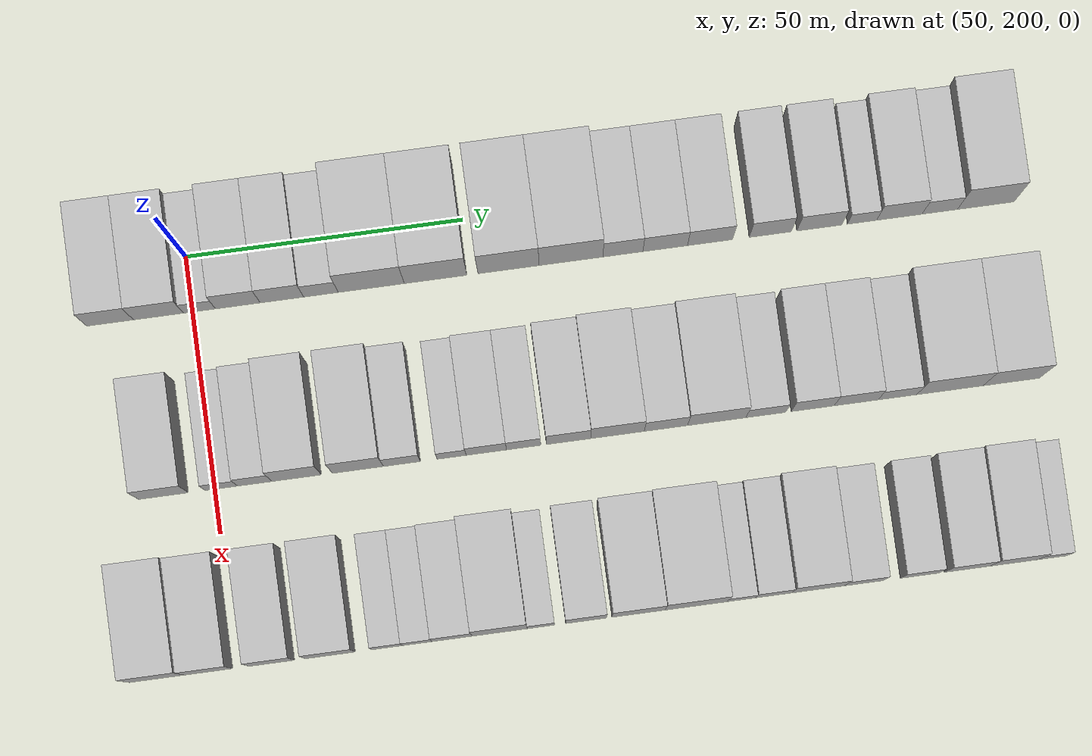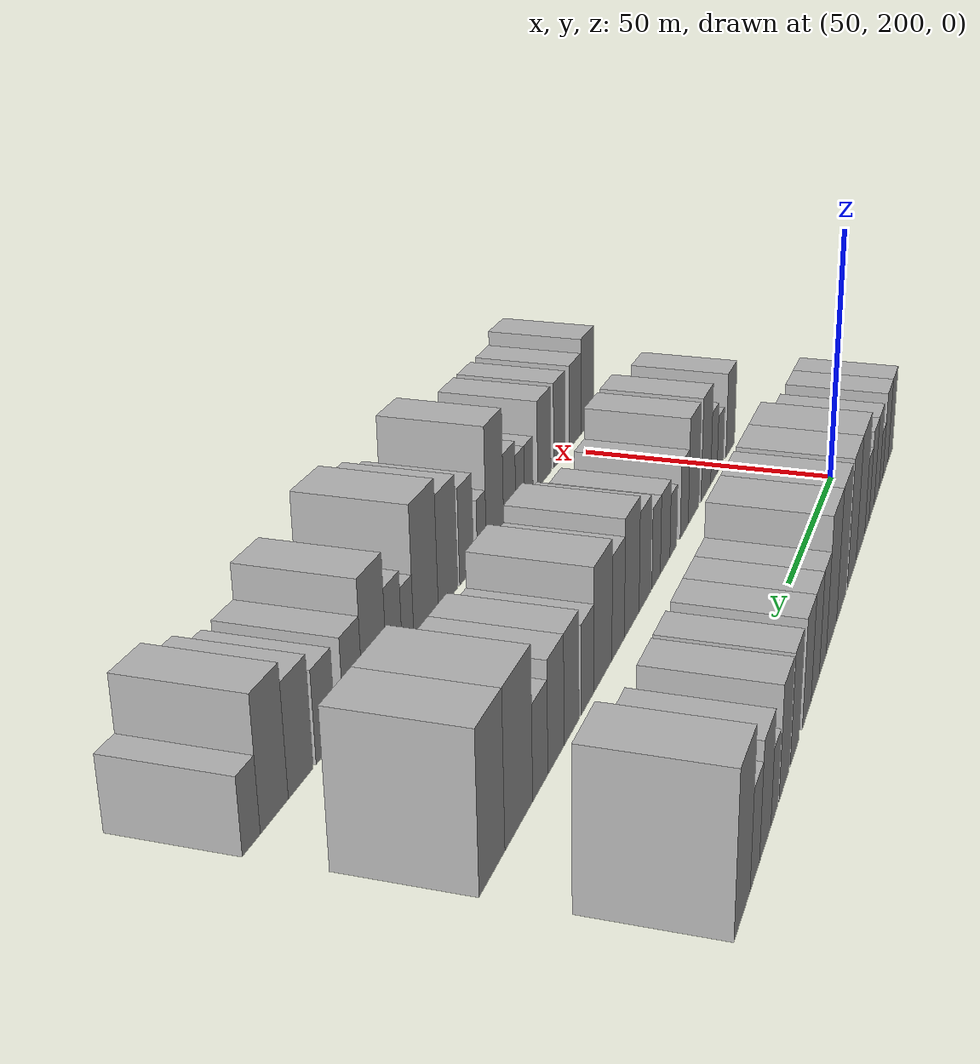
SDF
<sdf version="1.6">
 <world name="default">
  <model name="building_59">
   <static>1</static>
   <pose>50.0000 185.2239 0 0.000000 0.000000 0.000000</pose>
   <link name="link">
    <pose>0 0 9.00 0 0 0</pose>
    <collision name="collision"><geometry><box><size>20.0000 8.4047 18.0000</size></box></geometry></collision>
    <visual name="visual">
     <cast_shadows>0</cast_shadows>
     <geometry><box><size>20.0000 8.4047 18.0000</size></box></geometry>
     <material>
      <script>
       <uri>model://HANNAS_wall/materials/scripts</uri>
       <uri>model://HANNAS_wall/materials/textures</uri>
       <name>vrc/HANNAS_wall</name>
      </script>
     </material>
    </visual>
   </link>
  </model>
  <model name="building_60">
   <static>1</static>
   <pose>50.0000 193.9236 0 0.000000 0.000000 0.000000</pose>
   <link name="link">
    <pose>0 0 9.00 0 0 0</pose>
    <collision name="collision"><geometry><box><size>20.0000 8.9947 18.0000</size></box></geometry></collision>
    <visual name="visual">
     <cast_shadows>0</cast_shadows>
     <geometry><box><size>20.0000 8.9947 18.0000</size></box></geometry>
     <material>
      <script>
       <uri>model://HANNAS_wall/materials/scripts</uri>
       <uri>model://HANNAS_wall/materials/textures</uri>
       <name>vrc/HANNAS_wall</name>
      </script>
     </material>
    </visual>
   </link>
  </model>
  <model name="building_61">
   <static>1</static>
   <pose>50.0000 201.3138 0 0.000000 0.000000 0.000000</pose>
   <link name="link">
    <pose>0 0 6.00 0 0 0</pose>
    <collision name="collision"><geometry><box><size>20.0000 5.7857 12.0000</size></box></geometry></collision>
    <visual name="visual">
     <cast_shadows>0</cast_shadows>
     <geometry><box><size>20.0000 5.7857 12.0000</size></box></geometry>
     <material>
      <script>
       <uri>model://HANNAS_wall/materials/scripts</uri>
       <uri>model://HANNAS_wall/materials/textures</uri>
       <name>vrc/HANNAS_wall</name>
      </script>
     </material>
    </visual>
   </link>
  </model>
  <model name="building_62">
   <static>1</static>
   <pose>50.0000 208.2338 0 0.000000 0.000000 0.000000</pose>
   <link name="link">
    <pose>0 0 9.00 0 0 0</pose>
    <collision name="collision"><geometry><box><size>20.0000 8.0542 18.0000</size></box></geometry></collision>
    <visual name="visual">
     <cast_shadows>0</cast_shadows>
     <geometry><box><size>20.0000 8.0542 18.0000</size></box></geometry>
     <material>
      <script>
       <uri>model://HANNAS_wall/materials/scripts</uri>
       <uri>model://HANNAS_wall/materials/textures</uri>
       <name>vrc/HANNAS_wall</name>
      </script>
     </material>
    </visual>
   </link>
  </model>
  <model name="building_63">
   <static>1</static>
   <pose>50.0000 216.1742 0 0.000000 0.000000 0.000000</pose>
   <link name="link">
    <pose>0 0 9.00 0 0 0</pose>
    <collision name="collision"><geometry><box><size>20.0000 7.8266 18.0000</size></box></geometry></collision>
    <visual name="visual">
     <cast_shadows>0</cast_shadows>
     <geometry><box><size>20.0000 7.8266 18.0000</size></box></geometry>
     <material>
      <script>
       <uri>model://HANNAS_wall/materials/scripts</uri>
       <uri>model://HANNAS_wall/materials/textures</uri>
       <name>vrc/HANNAS_wall</name>
      </script>
     </material>
    </visual>
   </link>
  </model>
  <model name="building_64">
   <static>1</static>
   <pose>50.0000 223.1892 0 0.000000 0.000000 0.000000</pose>
   <link name="link">
    <pose>0 0 7.50 0 0 0</pose>
    <collision name="collision"><geometry><box><size>20.0000 6.2034 15.0000</size></box></geometry></collision>
    <visual name="visual">
     <cast_shadows>0</cast_shadows>
     <geometry><box><size>20.0000 6.2034 15.0000</size></box></geometry>
     <material>
      <script>
       <uri>model://HANNAS_wall/materials/scripts</uri>
       <uri>model://HANNAS_wall/materials/textures</uri>
       <name>vrc/HANNAS_wall</name>
      </script>
     </material>
    </visual>
   </link>
  </model>
  <model name="building_65">
   <static>1</static>
   <pose>50.0000 232.2570 0 0.000000 0.000000 0.000000</pose>
   <link name="link">
    <pose>0 0 12.00 0 0 0</pose>
    <collision name="collision"><geometry><box><size>20.0000 11.9323 24.0000</size></box></geometry></collision>
    <visual name="visual">
     <cast_shadows>0</cast_shadows>
     <geometry><box><size>20.0000 11.9323 24.0000</size></box></geometry>
     <material>
      <script>
       <uri>model://HANNAS_wall/materials/scripts</uri>
       <uri>model://HANNAS_wall/materials/textures</uri>
       <name>vrc/HANNAS_wall</name>
      </script>
     </material>
    </visual>
   </link>
  </model>
  <model name="building_66">
   <static>1</static>
   <pose>50.0000 243.8664 0 0.000000 0.000000 0.000000</pose>
   <link name="link">
    <pose>0 0 12.00 0 0 0</pose>
    <collision name="collision"><geometry><box><size>20.0000 11.2865 24.0000</size></box></geometry></collision>
    <visual name="visual">
     <cast_shadows>0</cast_shadows>
     <geometry><box><size>20.0000 11.2865 24.0000</size></box></geometry>
     <material>
      <script>
       <uri>model://HANNAS_wall/materials/scripts</uri>
       <uri>model://HANNAS_wall/materials/textures</uri>
       <name>vrc/HANNAS_wall</name>
      </script>
     </material>
    </visual>
   </link>
  </model>
  <model name="building_67">
   <static>1</static>
   <pose>50.0000 257.0216 0 0.000000 0.000000 0.000000</pose>
   <link name="link">
    <pose>0 0 12.00 0 0 0</pose>
    <collision name="collision"><geometry><box><size>20.0000 11.0239 24.0000</size></box></geometry></collision>
    <visual name="visual">
     <cast_shadows>0</cast_shadows>
     <geometry><box><size>20.0000 11.0239 24.0000</size></box></geometry>
     <material>
      <script>
       <uri>model://HANNAS_wall/materials/scripts</uri>
       <uri>model://HANNAS_wall/materials/textures</uri>
       <name>vrc/HANNAS_wall</name>
      </script>
     </material>
    </visual>
   </link>
  </model>
  <model name="building_68">
   <static>1</static>
   <pose>50.0000 268.2910 0 0.000000 0.000000 0.000000</pose>
   <link name="link">
    <pose>0 0 12.00 0 0 0</pose>
    <collision name="collision"><geometry><box><size>20.0000 11.5148 24.0000</size></box></geometry></collision>
    <visual name="visual">
     <cast_shadows>0</cast_shadows>
     <geometry><box><size>20.0000 11.5148 24.0000</size></box></geometry>
     <material>
      <script>
       <uri>model://HANNAS_wall/materials/scripts</uri>
       <uri>model://HANNAS_wall/materials/textures</uri>
       <name>vrc/HANNAS_wall</name>
      </script>
     </material>
    </visual>
   </link>
  </model>
  <model name="building_69">
   <static>1</static>
   <pose>50.0000 277.6541 0 0.000000 0.000000 0.000000</pose>
   <link name="link">
    <pose>0 0 9.00 0 0 0</pose>
    <collision name="collision"><geometry><box><size>20.0000 7.2114 18.0000</size></box></geometry></collision>
    <visual name="visual">
     <cast_shadows>0</cast_shadows>
     <geometry><box><size>20.0000 7.2114 18.0000</size></box></geometry>
     <material>
      <script>
       <uri>model://HANNAS_wall/materials/scripts</uri>
       <uri>model://HANNAS_wall/materials/textures</uri>
       <name>vrc/HANNAS_wall</name>
      </script>
     </material>
    </visual>
   </link>
  </model>
  <model name="building_70">
   <static>1</static>
   <pose>50.0000 285.2817 0 0.000000 0.000000 0.000000</pose>
   <link name="link">
    <pose>0 0 9.00 0 0 0</pose>
    <collision name="collision"><geometry><box><size>20.0000 8.0440 18.0000</size></box></geometry></collision>
    <visual name="visual">
     <cast_shadows>0</cast_shadows>
     <geometry><box><size>20.0000 8.0440 18.0000</size></box></geometry>
     <material>
      <script>
       <uri>model://HANNAS_wall/materials/scripts</uri>
       <uri>model://HANNAS_wall/materials/textures</uri>
       <name>vrc/HANNAS_wall</name>
      </script>
     </material>
    </visual>
   </link>
  </model>
  <model name="building_71">
   <static>1</static>
   <pose>50.0000 293.3890 0 0.000000 0.000000 0.000000</pose>
   <link name="link">
    <pose>0 0 9.00 0 0 0</pose>
    <collision name="collision"><geometry><box><size>20.0000 8.1705 18.0000</size></box></geometry></collision>
    <visual name="visual">
     <cast_shadows>0</cast_shadows>
     <geometry><box><size>20.0000 8.1705 18.0000</size></box></geometry>
     <material>
      <script>
       <uri>model://HANNAS_wall/materials/scripts</uri>
       <uri>model://HANNAS_wall/materials/textures</uri>
       <name>vrc/HANNAS_wall</name>
      </script>
     </material>
    </visual>
   </link>
  </model>
  <model name="building_72">
   <static>1</static>
   <pose>50.0000 304.2812 0 0.000000 0.000000 0.000000</pose>
   <link name="link">
    <pose>0 0 9.00 0 0 0</pose>
    <collision name="collision"><geometry><box><size>20.0000 7.6141 18.0000</size></box></geometry></collision>
    <visual name="visual">
     <cast_shadows>0</cast_shadows>
     <geometry><box><size>20.0000 7.6141 18.0000</size></box></geometry>
     <material>
      <script>
       <uri>model://HANNAS_wall/materials/scripts</uri>
       <uri>model://HANNAS_wall/materials/textures</uri>
       <name>vrc/HANNAS_wall</name>
      </script>
     </material>
    </visual>
   </link>
  </model>
  <model name="building_73">
   <static>1</static>
   <pose>50.0000 313.1544 0 0.000000 0.000000 0.000000</pose>
   <link name="link">
    <pose>0 0 9.00 0 0 0</pose>
    <collision name="collision"><geometry><box><size>20.0000 8.1323 18.0000</size></box></geometry></collision>
    <visual name="visual">
     <cast_shadows>0</cast_shadows>
     <geometry><box><size>20.0000 8.1323 18.0000</size></box></geometry>
     <material>
      <script>
       <uri>model://HANNAS_wall/materials/scripts</uri>
       <uri>model://HANNAS_wall/materials/textures</uri>
       <name>vrc/HANNAS_wall</name>
      </script>
     </material>
    </visual>
   </link>
  </model>
  <model name="building_74">
   <static>1</static>
   <pose>50.0000 320.8690 0 0.000000 0.000000 0.000000</pose>
   <link name="link">
    <pose>0 0 6.00 0 0 0</pose>
    <collision name="collision"><geometry><box><size>20.0000 5.2969 12.0000</size></box></geometry></collision>
    <visual name="visual">
     <cast_shadows>0</cast_shadows>
     <geometry><box><size>20.0000 5.2969 12.0000</size></box></geometry>
     <material>
      <script>
       <uri>model://HANNAS_wall/materials/scripts</uri>
       <uri>model://HANNAS_wall/materials/textures</uri>
       <name>vrc/HANNAS_wall</name>
      </script>
     </material>
    </visual>
   </link>
  </model>
  <model name="building_75">
   <static>1</static>
   <pose>50.0000 327.6372 0 0.000000 0.000000 0.000000</pose>
   <link name="link">
    <pose>0 0 9.00 0 0 0</pose>
    <collision name="collision"><geometry><box><size>20.0000 8.2394 18.0000</size></box></geometry></collision>
    <visual name="visual">
     <cast_shadows>0</cast_shadows>
     <geometry><box><size>20.0000 8.2394 18.0000</size></box></geometry>
     <material>
      <script>
       <uri>model://HANNAS_wall/materials/scripts</uri>
       <uri>model://HANNAS_wall/materials/textures</uri>
       <name>vrc/HANNAS_wall</name>
      </script>
     </material>
    </visual>
   </link>
  </model>
  <model name="building_76">
   <static>1</static>
   <pose>50.0000 334.9562 0 0.000000 0.000000 0.000000</pose>
   <link name="link">
    <pose>0 0 7.50 0 0 0</pose>
    <collision name="collision"><geometry><box><size>20.0000 6.3987 15.0000</size></box></geometry></collision>
    <visual name="visual">
     <cast_shadows>0</cast_shadows>
     <geometry><box><size>20.0000 6.3987 15.0000</size></box></geometry>
     <material>
      <script>
       <uri>model://HANNAS_wall/materials/scripts</uri>
       <uri>model://HANNAS_wall/materials/textures</uri>
       <name>vrc/HANNAS_wall</name>
      </script>
     </material>
    </visual>
   </link>
  </model>
  <model name="building_77">
   <static>1</static>
   <pose>50.0000 343.2751 0 0.000000 0.000000 0.000000</pose>
   <link name="link">
    <pose>0 0 12.00 0 0 0</pose>
    <collision name="collision"><geometry><box><size>20.0000 10.2391 24.0000</size></box></geometry></collision>
    <visual name="visual">
     <cast_shadows>0</cast_shadows>
     <geometry><box><size>20.0000 10.2391 24.0000</size></box></geometry>
     <material>
      <script>
       <uri>model://HANNAS_wall/materials/scripts</uri>
       <uri>model://HANNAS_wall/materials/textures</uri>
       <name>vrc/HANNAS_wall</name>
      </script>
     </material>
    </visual>
   </link>
  </model>
  <model name="building_142">
   <static>1</static>
   <pose>82.0000 190.8473 0 0.000000 0.000000 0.000000</pose>
   <link name="link">
    <pose>0 0 9.00 0 0 0</pose>
    <collision name="collision"><geometry><box><size>20.0000 8.9075 18.0000</size></box></geometry></collision>
    <visual name="visual">
     <cast_shadows>0</cast_shadows>
     <geometry><box><size>20.0000 8.9075 18.0000</size></box></geometry>
     <material>
      <script>
       <uri>model://HANNAS_wall/materials/scripts</uri>
       <uri>model://HANNAS_wall/materials/textures</uri>
       <name>vrc/HANNAS_wall</name>
      </script>
     </material>
    </visual>
   </link>
  </model>
  <model name="building_143">
   <static>1</static>
   <pose>82.0000 201.2250 0 0.000000 0.000000 0.000000</pose>
   <link name="link">
    <pose>0 0 6.00 0 0 0</pose>
    <collision name="collision"><geometry><box><size>20.0000 5.8479 12.0000</size></box></geometry></collision>
    <visual name="visual">
     <cast_shadows>0</cast_shadows>
     <geometry><box><size>20.0000 5.8479 12.0000</size></box></geometry>
     <material>
      <script>
       <uri>model://HANNAS_wall/materials/scripts</uri>
       <uri>model://HANNAS_wall/materials/textures</uri>
       <name>vrc/HANNAS_wall</name>
      </script>
     </material>
    </visual>
   </link>
  </model>
  <model name="building_144">
   <static>1</static>
   <pose>82.0000 207.2361 0 0.000000 0.000000 0.000000</pose>
   <link name="link">
    <pose>0 0 7.50 0 0 0</pose>
    <collision name="collision"><geometry><box><size>20.0000 6.1742 15.0000</size></box></geometry></collision>
    <visual name="visual">
     <cast_shadows>0</cast_shadows>
     <geometry><box><size>20.0000 6.1742 15.0000</size></box></geometry>
     <material>
      <script>
       <uri>model://HANNAS_wall/materials/scripts</uri>
       <uri>model://HANNAS_wall/materials/textures</uri>
       <name>vrc/HANNAS_wall</name>
      </script>
     </material>
    </visual>
   </link>
  </model>
  <model name="building_145">
   <static>1</static>
   <pose>82.0000 214.7445 0 0.000000 0.000000 0.000000</pose>
   <link name="link">
    <pose>0 0 10.50 0 0 0</pose>
    <collision name="collision"><geometry><box><size>20.0000 8.8427 21.0000</size></box></geometry></collision>
    <visual name="visual">
     <cast_shadows>0</cast_shadows>
     <geometry><box><size>20.0000 8.8427 21.0000</size></box></geometry>
     <material>
      <script>
       <uri>model://HANNAS_wall/materials/scripts</uri>
       <uri>model://HANNAS_wall/materials/textures</uri>
       <name>vrc/HANNAS_wall</name>
      </script>
     </material>
    </visual>
   </link>
  </model>
  <model name="building_146">
   <static>1</static>
   <pose>82.0000 225.7405 0 0.000000 0.000000 0.000000</pose>
   <link name="link">
    <pose>0 0 10.50 0 0 0</pose>
    <collision name="collision"><geometry><box><size>20.0000 9.1494 21.0000</size></box></geometry></collision>
    <visual name="visual">
     <cast_shadows>0</cast_shadows>
     <geometry><box><size>20.0000 9.1494 21.0000</size></box></geometry>
     <material>
      <script>
       <uri>model://HANNAS_wall/materials/scripts</uri>
       <uri>model://HANNAS_wall/materials/textures</uri>
       <name>vrc/HANNAS_wall</name>
      </script>
     </material>
    </visual>
   </link>
  </model>
  <model name="building_147">
   <static>1</static>
   <pose>82.0000 233.6318 0 0.000000 0.000000 0.000000</pose>
   <link name="link">
    <pose>0 0 7.50 0 0 0</pose>
    <collision name="collision"><geometry><box><size>20.0000 6.6333 15.0000</size></box></geometry></collision>
    <visual name="visual">
     <cast_shadows>0</cast_shadows>
     <geometry><box><size>20.0000 6.6333 15.0000</size></box></geometry>
     <material>
      <script>
       <uri>model://HANNAS_wall/materials/scripts</uri>
       <uri>model://HANNAS_wall/materials/textures</uri>
       <name>vrc/HANNAS_wall</name>
      </script>
     </material>
    </visual>
   </link>
  </model>
  <model name="building_148">
   <static>1</static>
   <pose>82.0000 242.5535 0 0.000000 0.000000 0.000000</pose>
   <link name="link">
    <pose>0 0 6.00 0 0 0</pose>
    <collision name="collision"><geometry><box><size>20.0000 5.2102 12.0000</size></box></geometry></collision>
    <visual name="visual">
     <cast_shadows>0</cast_shadows>
     <geometry><box><size>20.0000 5.2102 12.0000</size></box></geometry>
     <material>
      <script>
       <uri>model://HANNAS_wall/materials/scripts</uri>
       <uri>model://HANNAS_wall/materials/textures</uri>
       <name>vrc/HANNAS_wall</name>
      </script>
     </material>
    </visual>
   </link>
  </model>
  <model name="building_149">
   <static>1</static>
   <pose>82.0000 248.7764 0 0.000000 0.000000 0.000000</pose>
   <link name="link">
    <pose>0 0 7.50 0 0 0</pose>
    <collision name="collision"><geometry><box><size>20.0000 7.2355 15.0000</size></box></geometry></collision>
    <visual name="visual">
     <cast_shadows>0</cast_shadows>
     <geometry><box><size>20.0000 7.2355 15.0000</size></box></geometry>
     <material>
      <script>
       <uri>model://HANNAS_wall/materials/scripts</uri>
       <uri>model://HANNAS_wall/materials/textures</uri>
       <name>vrc/HANNAS_wall</name>
      </script>
     </material>
    </visual>
   </link>
  </model>
  <model name="building_150">
   <static>1</static>
   <pose>82.0000 255.4728 0 0.000000 0.000000 0.000000</pose>
   <link name="link">
    <pose>0 0 7.50 0 0 0</pose>
    <collision name="collision"><geometry><box><size>20.0000 6.1573 15.0000</size></box></geometry></collision>
    <visual name="visual">
     <cast_shadows>0</cast_shadows>
     <geometry><box><size>20.0000 6.1573 15.0000</size></box></geometry>
     <material>
      <script>
       <uri>model://HANNAS_wall/materials/scripts</uri>
       <uri>model://HANNAS_wall/materials/textures</uri>
       <name>vrc/HANNAS_wall</name>
      </script>
     </material>
    </visual>
   </link>
  </model>
  <model name="building_151">
   <static>1</static>
   <pose>82.0000 263.5306 0 0.000000 0.000000 0.000000</pose>
   <link name="link">
    <pose>0 0 9.00 0 0 0</pose>
    <collision name="collision"><geometry><box><size>20.0000 7.9581 18.0000</size></box></geometry></collision>
    <visual name="visual">
     <cast_shadows>0</cast_shadows>
     <geometry><box><size>20.0000 7.9581 18.0000</size></box></geometry>
     <material>
      <script>
       <uri>model://HANNAS_wall/materials/scripts</uri>
       <uri>model://HANNAS_wall/materials/textures</uri>
       <name>vrc/HANNAS_wall</name>
      </script>
     </material>
    </visual>
   </link>
  </model>
  <model name="building_152">
   <static>1</static>
   <pose>82.0000 272.3163 0 0.000000 0.000000 0.000000</pose>
   <link name="link">
    <pose>0 0 10.50 0 0 0</pose>
    <collision name="collision"><geometry><box><size>20.0000 9.6133 21.0000</size></box></geometry></collision>
    <visual name="visual">
     <cast_shadows>0</cast_shadows>
     <geometry><box><size>20.0000 9.6133 21.0000</size></box></geometry>
     <material>
      <script>
       <uri>model://HANNAS_wall/materials/scripts</uri>
       <uri>model://HANNAS_wall/materials/textures</uri>
       <name>vrc/HANNAS_wall</name>
      </script>
     </material>
    </visual>
   </link>
  </model>
  <model name="building_153">
   <static>1</static>
   <pose>82.0000 281.0144 0 0.000000 0.000000 0.000000</pose>
   <link name="link">
    <pose>0 0 9.00 0 0 0</pose>
    <collision name="collision"><geometry><box><size>20.0000 7.7829 18.0000</size></box></geometry></collision>
    <visual name="visual">
     <cast_shadows>0</cast_shadows>
     <geometry><box><size>20.0000 7.7829 18.0000</size></box></geometry>
     <material>
      <script>
       <uri>model://HANNAS_wall/materials/scripts</uri>
       <uri>model://HANNAS_wall/materials/textures</uri>
       <name>vrc/HANNAS_wall</name>
      </script>
     </material>
    </visual>
   </link>
  </model>
  <model name="building_154">
   <static>1</static>
   <pose>82.0000 290.1558 0 0.000000 0.000000 0.000000</pose>
   <link name="link">
    <pose>0 0 10.50 0 0 0</pose>
    <collision name="collision"><geometry><box><size>20.0000 10.4999 21.0000</size></box></geometry></collision>
    <visual name="visual">
     <cast_shadows>0</cast_shadows>
     <geometry><box><size>20.0000 10.4999 21.0000</size></box></geometry>
     <material>
      <script>
       <uri>model://HANNAS_wall/materials/scripts</uri>
       <uri>model://HANNAS_wall/materials/textures</uri>
       <name>vrc/HANNAS_wall</name>
      </script>
     </material>
    </visual>
   </link>
  </model>
  <model name="building_155">
   <static>1</static>
   <pose>82.0000 298.9835 0 0.000000 0.000000 0.000000</pose>
   <link name="link">
    <pose>0 0 7.50 0 0 0</pose>
    <collision name="collision"><geometry><box><size>20.0000 7.1554 15.0000</size></box></geometry></collision>
    <visual name="visual">
     <cast_shadows>0</cast_shadows>
     <geometry><box><size>20.0000 7.1554 15.0000</size></box></geometry>
     <material>
      <script>
       <uri>model://HANNAS_wall/materials/scripts</uri>
       <uri>model://HANNAS_wall/materials/textures</uri>
       <name>vrc/HANNAS_wall</name>
      </script>
     </material>
    </visual>
   </link>
  </model>
  <model name="building_156">
   <static>1</static>
   <pose>82.0000 307.4227 0 0.000000 0.000000 0.000000</pose>
   <link name="link">
    <pose>0 0 9.00 0 0 0</pose>
    <collision name="collision"><geometry><box><size>20.0000 7.7231 18.0000</size></box></geometry></collision>
    <visual name="visual">
     <cast_shadows>0</cast_shadows>
     <geometry><box><size>20.0000 7.7231 18.0000</size></box></geometry>
     <material>
      <script>
       <uri>model://HANNAS_wall/materials/scripts</uri>
       <uri>model://HANNAS_wall/materials/textures</uri>
       <name>vrc/HANNAS_wall</name>
      </script>
     </material>
    </visual>
   </link>
  </model>
  <model name="building_157">
   <static>1</static>
   <pose>82.0000 315.2455 0 0.000000 0.000000 0.000000</pose>
   <link name="link">
    <pose>0 0 9.00 0 0 0</pose>
    <collision name="collision"><geometry><box><size>20.0000 7.9226 18.0000</size></box></geometry></collision>
    <visual name="visual">
     <cast_shadows>0</cast_shadows>
     <geometry><box><size>20.0000 7.9226 18.0000</size></box></geometry>
     <material>
      <script>
       <uri>model://HANNAS_wall/materials/scripts</uri>
       <uri>model://HANNAS_wall/materials/textures</uri>
       <name>vrc/HANNAS_wall</name>
      </script>
     </material>
    </visual>
   </link>
  </model>
  <model name="building_158">
   <static>1</static>
   <pose>82.0000 322.7109 0 0.000000 0.000000 0.000000</pose>
   <link name="link">
    <pose>0 0 7.50 0 0 0</pose>
    <collision name="collision"><geometry><box><size>20.0000 7.0081 15.0000</size></box></geometry></collision>
    <visual name="visual">
     <cast_shadows>0</cast_shadows>
     <geometry><box><size>20.0000 7.0081 15.0000</size></box></geometry>
     <material>
      <script>
       <uri>model://HANNAS_wall/materials/scripts</uri>
       <uri>model://HANNAS_wall/materials/textures</uri>
       <name>vrc/HANNAS_wall</name>
      </script>
     </material>
    </visual>
   </link>
  </model>
  <model name="building_159">
   <static>1</static>
   <pose>82.0000 332.1820 0 0.000000 0.000000 0.000000</pose>
   <link name="link">
    <pose>0 0 12.00 0 0 0</pose>
    <collision name="collision"><geometry><box><size>20.0000 11.9340 24.0000</size></box></geometry></collision>
    <visual name="visual">
     <cast_shadows>0</cast_shadows>
     <geometry><box><size>20.0000 11.9340 24.0000</size></box></geometry>
     <material>
      <script>
       <uri>model://HANNAS_wall/materials/scripts</uri>
       <uri>model://HANNAS_wall/materials/textures</uri>
       <name>vrc/HANNAS_wall</name>
      </script>
     </material>
    </visual>
   </link>
  </model>
  <model name="building_160">
   <static>1</static>
   <pose>82.0000 343.2317 0 0.000000 0.000000 0.000000</pose>
   <link name="link">
    <pose>0 0 12.00 0 0 0</pose>
    <collision name="collision"><geometry><box><size>20.0000 10.1655 24.0000</size></box></geometry></collision>
    <visual name="visual">
     <cast_shadows>0</cast_shadows>
     <geometry><box><size>20.0000 10.1655 24.0000</size></box></geometry>
     <material>
      <script>
       <uri>model://HANNAS_wall/materials/scripts</uri>
       <uri>model://HANNAS_wall/materials/textures</uri>
       <name>vrc/HANNAS_wall</name>
      </script>
     </material>
    </visual>
   </link>
  </model>
  <model name="building_213">
   <static>1</static>
   <pose>114.0000 185.6867 0 0.000000 0.000000 0.000000</pose>
   <link name="link">
    <pose>0 0 10.50 0 0 0</pose>
    <collision name="collision"><geometry><box><size>20.0000 9.8642 21.0000</size></box></geometry></collision>
    <visual name="visual">
     <cast_shadows>0</cast_shadows>
     <geometry><box><size>20.0000 9.8642 21.0000</size></box></geometry>
     <material>
      <script>
       <uri>model://HANNAS_wall/materials/scripts</uri>
       <uri>model://HANNAS_wall/materials/textures</uri>
       <name>vrc/HANNAS_wall</name>
      </script>
     </material>
    </visual>
   </link>
  </model>
  <model name="building_214">
   <static>1</static>
   <pose>114.0000 194.9127 0 0.000000 0.000000 0.000000</pose>
   <link name="link">
    <pose>0 0 9.00 0 0 0</pose>
    <collision name="collision"><geometry><box><size>20.0000 8.5877 18.0000</size></box></geometry></collision>
    <visual name="visual">
     <cast_shadows>0</cast_shadows>
     <geometry><box><size>20.0000 8.5877 18.0000</size></box></geometry>
     <material>
      <script>
       <uri>model://HANNAS_wall/materials/scripts</uri>
       <uri>model://HANNAS_wall/materials/textures</uri>
       <name>vrc/HANNAS_wall</name>
      </script>
     </material>
    </visual>
   </link>
  </model>
  <model name="building_215">
   <static>1</static>
   <pose>114.0000 206.2266 0 0.000000 0.000000 0.000000</pose>
   <link name="link">
    <pose>0 0 9.00 0 0 0</pose>
    <collision name="collision"><geometry><box><size>20.0000 8.0401 18.0000</size></box></geometry></collision>
    <visual name="visual">
     <cast_shadows>0</cast_shadows>
     <geometry><box><size>20.0000 8.0401 18.0000</size></box></geometry>
     <material>
      <script>
       <uri>model://HANNAS_wall/materials/scripts</uri>
       <uri>model://HANNAS_wall/materials/textures</uri>
       <name>vrc/HANNAS_wall</name>
      </script>
     </material>
    </visual>
   </link>
  </model>
  <model name="building_216">
   <static>1</static>
   <pose>114.0000 216.6697 0 0.000000 0.000000 0.000000</pose>
   <link name="link">
    <pose>0 0 9.00 0 0 0</pose>
    <collision name="collision"><geometry><box><size>20.0000 8.8462 18.0000</size></box></geometry></collision>
    <visual name="visual">
     <cast_shadows>0</cast_shadows>
     <geometry><box><size>20.0000 8.8462 18.0000</size></box></geometry>
     <material>
      <script>
       <uri>model://HANNAS_wall/materials/scripts</uri>
       <uri>model://HANNAS_wall/materials/textures</uri>
       <name>vrc/HANNAS_wall</name>
      </script>
     </material>
    </visual>
   </link>
  </model>
  <model name="building_217">
   <static>1</static>
   <pose>114.0000 226.8255 0 0.000000 0.000000 0.000000</pose>
   <link name="link">
    <pose>0 0 6.00 0 0 0</pose>
    <collision name="collision"><geometry><box><size>20.0000 5.4653 12.0000</size></box></geometry></collision>
    <visual name="visual">
     <cast_shadows>0</cast_shadows>
     <geometry><box><size>20.0000 5.4653 12.0000</size></box></geometry>
     <material>
      <script>
       <uri>model://HANNAS_wall/materials/scripts</uri>
       <uri>model://HANNAS_wall/materials/textures</uri>
       <name>vrc/HANNAS_wall</name>
      </script>
     </material>
    </visual>
   </link>
  </model>
  <model name="building_218">
   <static>1</static>
   <pose>114.0000 232.2080 0 0.000000 0.000000 0.000000</pose>
   <link name="link">
    <pose>0 0 6.00 0 0 0</pose>
    <collision name="collision"><geometry><box><size>20.0000 5.2996 12.0000</size></box></geometry></collision>
    <visual name="visual">
     <cast_shadows>0</cast_shadows>
     <geometry><box><size>20.0000 5.2996 12.0000</size></box></geometry>
     <material>
      <script>
       <uri>model://HANNAS_wall/materials/scripts</uri>
       <uri>model://HANNAS_wall/materials/textures</uri>
       <name>vrc/HANNAS_wall</name>
      </script>
     </material>
    </visual>
   </link>
  </model>
  <model name="building_219">
   <static>1</static>
   <pose>114.0000 238.4669 0 0.000000 0.000000 0.000000</pose>
   <link name="link">
    <pose>0 0 7.50 0 0 0</pose>
    <collision name="collision"><geometry><box><size>20.0000 7.2182 15.0000</size></box></geometry></collision>
    <visual name="visual">
     <cast_shadows>0</cast_shadows>
     <geometry><box><size>20.0000 7.2182 15.0000</size></box></geometry>
     <material>
      <script>
       <uri>model://HANNAS_wall/materials/scripts</uri>
       <uri>model://HANNAS_wall/materials/textures</uri>
       <name>vrc/HANNAS_wall</name>
      </script>
     </material>
    </visual>
   </link>
  </model>
  <model name="building_220">
   <static>1</static>
   <pose>114.0000 246.9609 0 0.000000 0.000000 0.000000</pose>
   <link name="link">
    <pose>0 0 12.00 0 0 0</pose>
    <collision name="collision"><geometry><box><size>20.0000 9.7697 24.0000</size></box></geometry></collision>
    <visual name="visual">
     <cast_shadows>0</cast_shadows>
     <geometry><box><size>20.0000 9.7697 24.0000</size></box></geometry>
     <material>
      <script>
       <uri>model://HANNAS_wall/materials/scripts</uri>
       <uri>model://HANNAS_wall/materials/textures</uri>
       <name>vrc/HANNAS_wall</name>
      </script>
     </material>
    </visual>
   </link>
  </model>
  <model name="building_221">
   <static>1</static>
   <pose>114.0000 254.2714 0 0.000000 0.000000 0.000000</pose>
   <link name="link">
    <pose>0 0 6.00 0 0 0</pose>
    <collision name="collision"><geometry><box><size>20.0000 4.8513 12.0000</size></box></geometry></collision>
    <visual name="visual">
     <cast_shadows>0</cast_shadows>
     <geometry><box><size>20.0000 4.8513 12.0000</size></box></geometry>
     <material>
      <script>
       <uri>model://HANNAS_wall/materials/scripts</uri>
       <uri>model://HANNAS_wall/materials/textures</uri>
       <name>vrc/HANNAS_wall</name>
      </script>
     </material>
    </visual>
   </link>
  </model>
  <model name="building_222">
   <static>1</static>
   <pose>114.0000 262.3317 0 0.000000 0.000000 0.000000</pose>
   <link name="link">
    <pose>0 0 9.00 0 0 0</pose>
    <collision name="collision"><geometry><box><size>20.0000 7.2694 18.0000</size></box></geometry></collision>
    <visual name="visual">
     <cast_shadows>0</cast_shadows>
     <geometry><box><size>20.0000 7.2694 18.0000</size></box></geometry>
     <material>
      <script>
       <uri>model://HANNAS_wall/materials/scripts</uri>
       <uri>model://HANNAS_wall/materials/textures</uri>
       <name>vrc/HANNAS_wall</name>
      </script>
     </material>
    </visual>
   </link>
  </model>
  <model name="building_223">
   <static>1</static>
   <pose>114.0000 271.6908 0 0.000000 0.000000 0.000000</pose>
   <link name="link">
    <pose>0 0 10.50 0 0 0</pose>
    <collision name="collision"><geometry><box><size>20.0000 9.4489 21.0000</size></box></geometry></collision>
    <visual name="visual">
     <cast_shadows>0</cast_shadows>
     <geometry><box><size>20.0000 9.4489 21.0000</size></box></geometry>
     <material>
      <script>
       <uri>model://HANNAS_wall/materials/scripts</uri>
       <uri>model://HANNAS_wall/materials/textures</uri>
       <name>vrc/HANNAS_wall</name>
      </script>
     </material>
    </visual>
   </link>
  </model>
  <model name="building_224">
   <static>1</static>
   <pose>114.0000 281.9964 0 0.000000 0.000000 0.000000</pose>
   <link name="link">
    <pose>0 0 12.00 0 0 0</pose>
    <collision name="collision"><geometry><box><size>20.0000 11.1621 24.0000</size></box></geometry></collision>
    <visual name="visual">
     <cast_shadows>0</cast_shadows>
     <geometry><box><size>20.0000 11.1621 24.0000</size></box></geometry>
     <material>
      <script>
       <uri>model://HANNAS_wall/materials/scripts</uri>
       <uri>model://HANNAS_wall/materials/textures</uri>
       <name>vrc/HANNAS_wall</name>
      </script>
     </material>
    </visual>
   </link>
  </model>
  <model name="building_225">
   <static>1</static>
   <pose>114.0000 290.0874 0 0.000000 0.000000 0.000000</pose>
   <link name="link">
    <pose>0 0 6.00 0 0 0</pose>
    <collision name="collision"><geometry><box><size>20.0000 5.0199 12.0000</size></box></geometry></collision>
    <visual name="visual">
     <cast_shadows>0</cast_shadows>
     <geometry><box><size>20.0000 5.0199 12.0000</size></box></geometry>
     <material>
      <script>
       <uri>model://HANNAS_wall/materials/scripts</uri>
       <uri>model://HANNAS_wall/materials/textures</uri>
       <name>vrc/HANNAS_wall</name>
      </script>
     </material>
    </visual>
   </link>
  </model>
  <model name="building_226">
   <static>1</static>
   <pose>114.0000 295.8177 0 0.000000 0.000000 0.000000</pose>
   <link name="link">
    <pose>0 0 7.50 0 0 0</pose>
    <collision name="collision"><geometry><box><size>20.0000 6.4407 15.0000</size></box></geometry></collision>
    <visual name="visual">
     <cast_shadows>0</cast_shadows>
     <geometry><box><size>20.0000 6.4407 15.0000</size></box></geometry>
     <material>
      <script>
       <uri>model://HANNAS_wall/materials/scripts</uri>
       <uri>model://HANNAS_wall/materials/textures</uri>
       <name>vrc/HANNAS_wall</name>
      </script>
     </material>
    </visual>
   </link>
  </model>
  <model name="building_227">
   <static>1</static>
   <pose>114.0000 303.7808 0 0.000000 0.000000 0.000000</pose>
   <link name="link">
    <pose>0 0 10.50 0 0 0</pose>
    <collision name="collision"><geometry><box><size>20.0000 9.4856 21.0000</size></box></geometry></collision>
    <visual name="visual">
     <cast_shadows>0</cast_shadows>
     <geometry><box><size>20.0000 9.4856 21.0000</size></box></geometry>
     <material>
      <script>
       <uri>model://HANNAS_wall/materials/scripts</uri>
       <uri>model://HANNAS_wall/materials/textures</uri>
       <name>vrc/HANNAS_wall</name>
      </script>
     </material>
    </visual>
   </link>
  </model>
  <model name="building_228">
   <static>1</static>
   <pose>114.0000 312.0696 0 0.000000 0.000000 0.000000</pose>
   <link name="link">
    <pose>0 0 7.50 0 0 0</pose>
    <collision name="collision"><geometry><box><size>20.0000 7.0920 15.0000</size></box></geometry></collision>
    <visual name="visual">
     <cast_shadows>0</cast_shadows>
     <geometry><box><size>20.0000 7.0920 15.0000</size></box></geometry>
     <material>
      <script>
       <uri>model://HANNAS_wall/materials/scripts</uri>
       <uri>model://HANNAS_wall/materials/textures</uri>
       <name>vrc/HANNAS_wall</name>
      </script>
     </material>
    </visual>
   </link>
  </model>
  <model name="building_229">
   <static>1</static>
   <pose>114.0000 322.0674 0 0.000000 0.000000 0.000000</pose>
   <link name="link">
    <pose>0 0 7.50 0 0 0</pose>
    <collision name="collision"><geometry><box><size>20.0000 6.9038 15.0000</size></box></geometry></collision>
    <visual name="visual">
     <cast_shadows>0</cast_shadows>
     <geometry><box><size>20.0000 6.9038 15.0000</size></box></geometry>
     <material>
      <script>
       <uri>model://HANNAS_wall/materials/scripts</uri>
       <uri>model://HANNAS_wall/materials/textures</uri>
       <name>vrc/HANNAS_wall</name>
      </script>
     </material>
    </visual>
   </link>
  </model>
  <model name="building_230">
   <static>1</static>
   <pose>114.0000 330.5736 0 0.000000 0.000000 0.000000</pose>
   <link name="link">
    <pose>0 0 9.00 0 0 0</pose>
    <collision name="collision"><geometry><box><size>20.0000 8.1084 18.0000</size></box></geometry></collision>
    <visual name="visual">
     <cast_shadows>0</cast_shadows>
     <geometry><box><size>20.0000 8.1084 18.0000</size></box></geometry>
     <material>
      <script>
       <uri>model://HANNAS_wall/materials/scripts</uri>
       <uri>model://HANNAS_wall/materials/textures</uri>
       <name>vrc/HANNAS_wall</name>
      </script>
     </material>
    </visual>
   </link>
  </model>
  <model name="building_231">
   <static>1</static>
   <pose>114.0000 338.9202 0 0.000000 0.000000 0.000000</pose>
   <link name="link">
    <pose>0 0 10.50 0 0 0</pose>
    <collision name="collision"><geometry><box><size>20.0000 8.5847 21.0000</size></box></geometry></collision>
    <visual name="visual">
     <cast_shadows>0</cast_shadows>
     <geometry><box><size>20.0000 8.5847 21.0000</size></box></geometry>
     <material>
      <script>
       <uri>model://HANNAS_wall/materials/scripts</uri>
       <uri>model://HANNAS_wall/materials/textures</uri>
       <name>vrc/HANNAS_wall</name>
      </script>
     </material>
    </visual>
   </link>
  </model>
  <model name="building_232">
   <static>1</static>
   <pose>114.0000 345.8391 0 0.000000 0.000000 0.000000</pose>
   <link name="link">
    <pose>0 0 6.00 0 0 0</pose>
    <collision name="collision"><geometry><box><size>20.0000 5.2532 12.0000</size></box></geometry></collision>
    <visual name="visual">
     <cast_shadows>0</cast_shadows>
     <geometry><box><size>20.0000 5.2532 12.0000</size></box></geometry>
     <material>
      <script>
       <uri>model://HANNAS_wall/materials/scripts</uri>
       <uri>model://HANNAS_wall/materials/textures</uri>
       <name>vrc/HANNAS_wall</name>
      </script>
     </material>
    </visual>
   </link>
  </model>
 </world>
</sdf>
